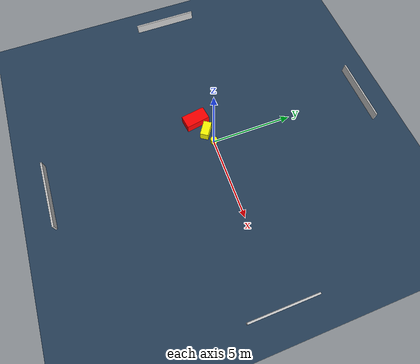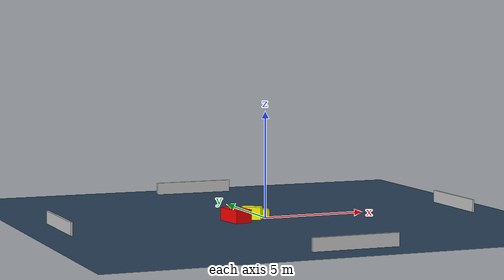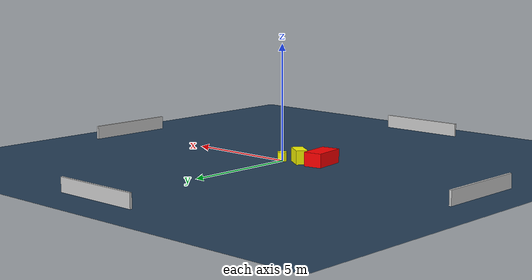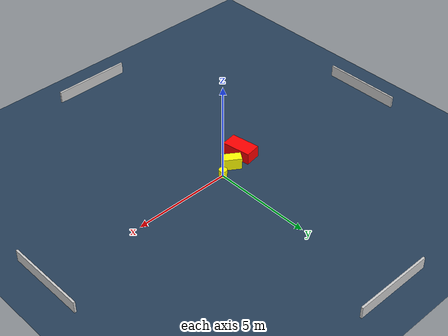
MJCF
<?xml version="1.0" ?>
<mujoco model="generated_environment">
  <option timestep="0.01" integrator="RK4" cone="elliptic"/>
  <default>
    <geom density="1"/>
  </default>
  <asset>
    <texture builtin="gradient" height="3072" name="skybox" rgb1="0.3 0.5 0.7" rgb2="0 0 0" type="skybox" width="512"/>
    <texture builtin="checker" height="300" name="groundplane" rgb1="0.2 0.3 0.4" rgb2="0.1 0.2 0.3" type="2d" width="300"/>
    <material name="groundplane" reflectance="0.2" texrepeat="5 5" texture="groundplane"/>
  </asset>
  <worldbody>
    <light dir="0 0 -1" directional="true" pos="0 0 1.5"/>
    <geom condim="3" friction="0.5 0.005 0.001" material="groundplane" name="floor" pos="0 0 0" size="0 0 0.05" type="plane"/>
    <body name="walls">
      <geom name="wall_1" condim="4" pos="-10.0 0.0 0.3" rgba="0.800000011920929 0.800000011920929 0.800000011920929 1.0" size="0.05 2.0 0.3" type="box"/>
      <geom name="wall_2" condim="4" pos="10.0 0.0 0.3" rgba="0.800000011920929 0.800000011920929 0.800000011920929 1.0" size="0.05 2.0 0.3" type="box"/>
      <geom name="wall_3" condim="4" pos="0.0 -10.0 0.3" rgba="0.800000011920929 0.800000011920929 0.800000011920929 1.0" size="2.0 0.05 0.3" type="box"/>
      <geom name="wall_4" condim="4" pos="0.0 10.0 0.3" rgba="0.800000011920929 0.800000011920929 0.800000011920929 1.0" size="2.0 0.05 0.3" type="box"/>
    </body>
    <body name="robot">
      <joint name="joint_x" type="slide" pos="0 0 0" axis="1 0 0"/>
      <joint name="joint_y" type="slide" pos="0 0 0" axis="0 1 0"/>
      <geom name="robot" type="cylinder" pos="0.0 0.0 0.2" size="0.2 0.2 0.0" mass="5.0" friction="1.0 0.005 0.0001" condim="4" rgba="1.0 1.0 0.0 1.0"/>
    </body>
    <body name="obstacle_1_movable">
      <geom name="obstacle_1_movable" condim="4" pos="-0.7807536586688395 -0.22851974317166085 0.3" euler="0 0 56.16500670039452" friction="0.0 0.005 0.001" rgba="1.0 1.0 0.0 1.0" size="0.24855975089693344 0.4614870695554778 0.3" type="box" mass="0.1"/>
      <joint type="free"/>
    </body>
    <body name="obstacle_2_static">
      <geom name="obstacle_2_static" condim="4" pos="-1.718726755419747 -0.5811941211127157 0.3" euler="0 0 278.85106055713044" friction="0.0 0.005 0.001" rgba="1.0 0.0 0.0 1.0" size="0.7345827253858468 0.40391232128536436 0.3" type="box"/>
    </body>
  </worldbody>
  <actuator>
    <motor name="actuator_x" joint="joint_x" gear="1" ctrlrange="-1 1"/>
    <motor name="actuator_y" joint="joint_y" gear="1" ctrlrange="-1 1"/>
  </actuator>
</mujoco>
